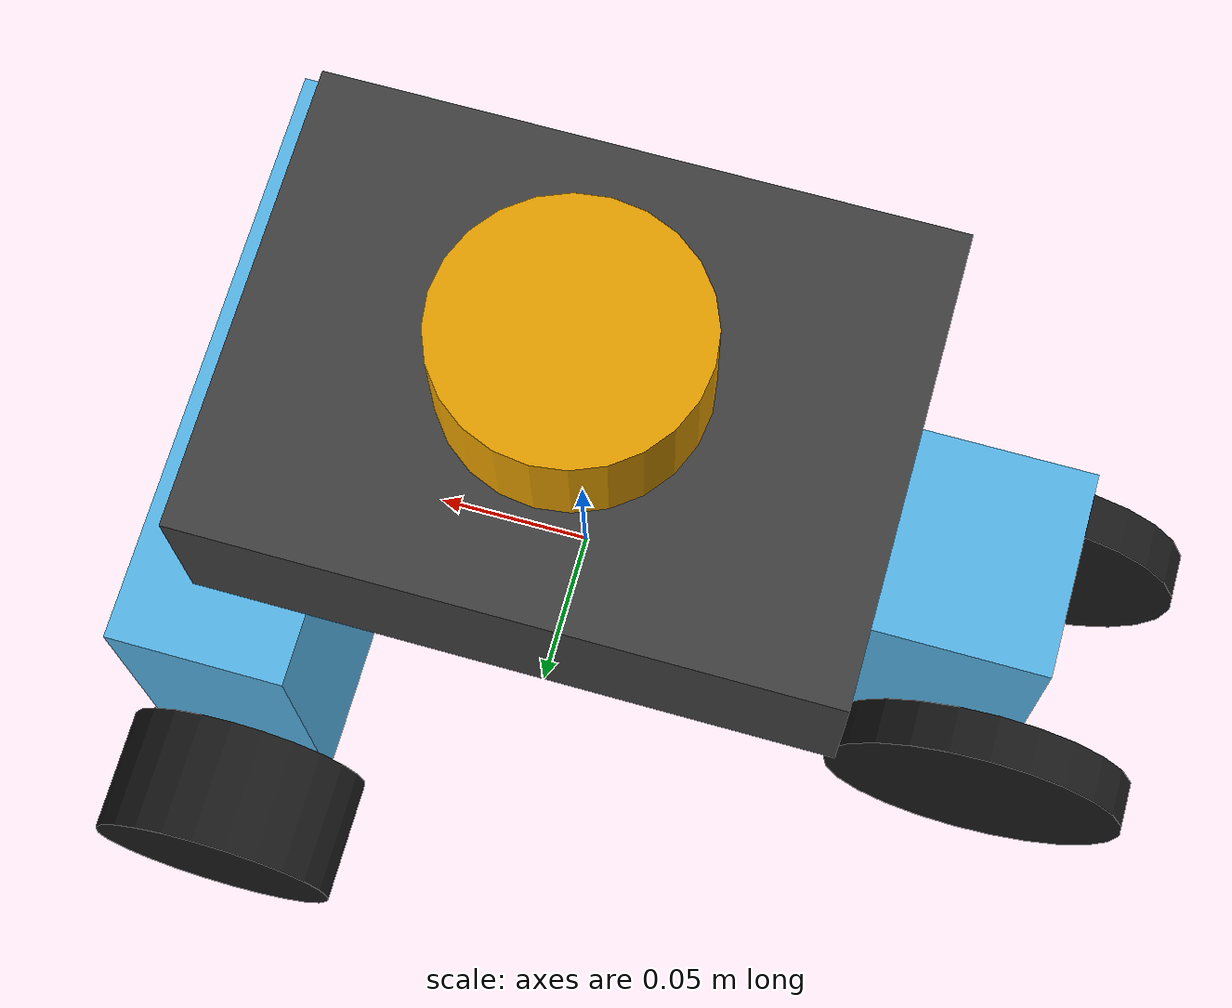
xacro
<?xml version="1.0"?>
<robot name="WALL-E" xmlns:xacro="http://www.ros.org/wiki/xacro">
  <xacro:include filename="$(find robot_description)/urdf/base.xacro"/>
  <xacro:include filename="$(find robot_description)/urdf/wheels.xacro"/>
  <xacro:include filename="$(find robot_description)/urdf/sensors.xacro"/>
  <xacro:include filename="$(find hardware)/ros2_control.xacro"/>
</robot>

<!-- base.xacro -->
<robot name="base" xmlns:xacro="http://www.ros.org/wiki/xacro">

    <xacro:property name="base_length" value="0.3"/>
    <xacro:property name="base_width" value="0.2"/>
    <xacro:property name="base_height" value="0.15"/>
    <xacro:property name="base_mass" value="4.0"/>
    <xacro:property name="base_color" value="0.25 0.25 0.25 1"/>

    <material name="base_material">
        <color rgba="${base_color}"/>
    </material>

    <link name="base_footprint"/>
    <link name="base_link">
        <visual>
            <origin xyz="0 0 0"/>
            <geometry>
                <box size="0.195 0.145 0.055"/>
            </geometry>
            <material name="base_material"/>
        </visual>
        <collision>
            <origin xyz="0 0 0"/>
            <geometry>
                <box size="0.19 0.145 0.055"/>
            </geometry>
        </collision>

        <inertial>
            <origin xyz="0 0 0"/>
            <mass value="${base_mass}"/>
            <inertia
                ixx="${(1/12) * base_mass * (base_width**2 + base_height**2)}"
                ixy="0" ixz="0"
                iyy="${(1/12) * base_mass * (base_length**2 + base_height**2)}"
                iyz="0"
                izz="${(1/12) * base_mass * (base_length**2 + base_width**2)}"/>
        </inertial>

        <visual>
            <origin xyz="-0.08 0 -0.075"/>
            <geometry>
                <box size="0.145 0.065 0.095"/>
            </geometry>
        </visual>
        <collision>
            <origin xyz="-0.08 0 -0.075"/>
            <geometry>
                <box size="0.145 0.065 0.095"/>
            </geometry>
        </collision>

        <visual>
            <origin xyz="0.09 0 -0.085"/>
            <geometry>
                <box size="0.055 0.19 0.115"/>
            </geometry>
        </visual>
        <collision>
            <origin xyz="0.09 0 -0.085"/>
            <geometry>
                <box size="0.055 0.19 0.115"/>
            </geometry>
        </collision>
    </link>

    <joint name="base_joint" type="fixed">
        <parent link="base_footprint"/>
        <child link="base_link"/>
        <origin xyz="0 0 0.12"/>
    </joint>

</robot>

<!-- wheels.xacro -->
<robot name="wheels" xmlns:xacro="http://www.ros.org/wiki/xacro">

    <!-- ===== Properties ===== -->

    <xacro:property name="front_wheel_radius"   value="0.04"/>
    <xacro:property name="front_wheel_width"    value="0.04"/>
    <xacro:property name="front_wheel_mass"      value="0.3"/>

    <xacro:property name="rear_wheel_radius"    value="0.05"/>
    <xacro:property name="rear_wheel_width"    value="0.015"/>
    <xacro:property name="rear_wheel_mass"       value="0.1"/>

    <!-- Ackermann geometry (must match controllers.yaml) -->
    <xacro:property name="wheelbase"            value="0.245"/>   <!-- front-to-rear axle distance -->
    <xacro:property name="front_track_width"    value="0.23"/>   <!-- left-to-right wheel distance -->
    <xacro:property name="rear_track_width"     value="0.08"/>
    <xacro:property name="front_wheel_z"        value="-0.1425"/> <!-- wheel centre below base_link -->
    <xacro:property name="rear_wheel_z"         value="-0.1325"/>

    <!-- Cylinder inertia (wheel rolls on Y axis) -->
    <xacro:property name="front_wheel_ixy" value="${(1/12) * front_wheel_mass * (3 * front_wheel_radius**2 + front_wheel_width**2)}"/>
    <xacro:property name="front_wheel_izz" value="${(1/2)  * front_wheel_mass * front_wheel_radius**2}"/>

    <xacro:property name="rear_wheel_ixy" value="${(1/12) * rear_wheel_mass * (3 * rear_wheel_radius**2 + rear_wheel_width**2)}"/>
    <xacro:property name="rear_wheel_izz" value="${(1/2)  * rear_wheel_mass * rear_wheel_radius**2}"/>

    <!-- Steering knuckle inertia (tiny virtual link) -->
    <xacro:property name="steer_mass"    value="0.05"/>
    <xacro:property name="steer_inertia" value="0.0001"/>

    <material name="wheel_material">
        <color rgba="0.1 0.1 0.1 1"/>
    </material>

    <!-- ===== Macros ===== -->

    <!-- Virtual steering knuckle link (Ackermann pivot) -->
    <xacro:macro name="steering_link" params="name">
        <link name="${name}">
            <visual>
                <origin xyz="0 0 0"/>
                <geometry><cylinder radius="0.01" length="0.001"/></geometry>
            </visual>
            <inertial>
                <origin xyz="0 0 0"/>
                <mass value="${steer_mass}"/>
                <inertia ixx="${steer_inertia}" ixy="0" ixz="0"
                         iyy="${steer_inertia}" iyz="0"
                         izz="${steer_inertia}"/>
            </inertial>
        </link>
    </xacro:macro>

    <!-- Wheel link (cylinder rotated 90° so it rolls on Y axis) -->
    <xacro:macro name="front_wheel_link" params="name">
        <link name="${name}">
            <visual>
                <origin xyz="0 0 0" rpy="1.5707963 0 0"/>
                <geometry><cylinder radius="${front_wheel_radius}" length="${front_wheel_width}"/></geometry>
                <material name="wheel_material"/>
            </visual>
            <collision>
                <origin xyz="0 0 0" rpy="1.5707963 0 0"/>
                <geometry><cylinder radius="${front_wheel_radius}" length="${front_wheel_width}"/></geometry>
            </collision>
            <inertial>
                <origin xyz="0 0 0"/>
                <mass value="${front_wheel_mass}"/>
                <inertia ixx="${front_wheel_ixy}" ixy="0" ixz="0"
                         iyy="${front_wheel_ixy}" iyz="0"
                         izz="${front_wheel_izz}"/>
            </inertial>
        </link>
    </xacro:macro>

    <xacro:macro name="rear_wheel_link" params="name">
        <link name="${name}">
            <visual>
                <origin xyz="0 0 0" rpy="1.5707963 0 0"/>
                <geometry><cylinder radius="${rear_wheel_radius}" length="${rear_wheel_width}"/></geometry>
                <material name="wheel_material"/>
            </visual>
            <collision>
                <origin xyz="0 0 0" rpy="1.5707963 0 0"/>
                <geometry><cylinder radius="${rear_wheel_radius}" length="${rear_wheel_width}"/></geometry>
            </collision>
            <inertial>
                <origin xyz="0 0 0"/>
                <mass value="${rear_wheel_mass}"/>
                <inertia ixx="${rear_wheel_ixy}" ixy="0" ixz="0"
                         iyy="${rear_wheel_ixy}" iyz="0"
                         izz="${rear_wheel_izz}"/>
            </inertial>
        </link>
    </xacro:macro>

    <!-- ===== Links ===== -->

    <!-- Front steering knuckles (Ackermann: FRONT only) -->
    <xacro:steering_link name="front_left_steering_link"/>
    <xacro:steering_link name="front_right_steering_link"/>

    <!-- All four wheels via macro -->
    <xacro:front_wheel_link name="front_left_wheel_link"/>
    <xacro:front_wheel_link name="front_right_wheel_link"/>
    <xacro:rear_wheel_link name="rear_left_wheel_link"/>
    <xacro:rear_wheel_link name="rear_right_wheel_link"/>

    <!-- ===== Joints ===== -->

    <!-- Front steering joints (revolute: Ackermann, front-only) -->
    <joint name="front_left_steering_joint" type="revolute">
        <parent link="base_link"/>
        <child link="front_left_steering_link"/>
        <origin xyz="0.09 ${front_track_width/2} ${front_wheel_z}"/>
        <axis xyz="0 0 1"/>
        <limit lower="-0.819" upper="0.819" effort="30.0" velocity="30.0"/>
        <dynamics damping="0.2" friction="0.0"/>
    </joint>

    <joint name="front_right_steering_joint" type="revolute">
        <parent link="base_link"/>
        <child link="front_right_steering_link"/>
        <origin xyz="0.09 ${-front_track_width/2} ${front_wheel_z}"/>
        <axis xyz="0 0 1"/>
        <limit lower="-0.819" upper="0.819" effort="30.0" velocity="30.0"/>
        <dynamics damping="0.2" friction="0.0"/>
    </joint>

    <!-- Front wheel joints (continuous: driven, child of steering knuckle) -->
    <joint name="front_left_wheel_joint" type="continuous">
        <parent link="front_left_steering_link"/>
        <child link="front_left_wheel_link"/>
        <origin xyz="0 0 0"/>
        <axis xyz="0 1 0"/>
        <dynamics damping="0.01" friction="0.0"/>
    </joint>

    <joint name="front_right_wheel_joint" type="continuous">
        <parent link="front_right_steering_link"/>
        <child link="front_right_wheel_link"/>
        <origin xyz="0 0 0"/>
        <axis xyz="0 1 0"/>
        <dynamics damping="0.01" friction="0.0"/>
    </joint>

    <!-- Rear wheel joints (continuous: connect directly to base_link, no steering) -->
    <joint name="rear_left_wheel_joint" type="continuous">
        <parent link="base_link"/>
        <child link="rear_left_wheel_link"/>
        <origin xyz="-0.145 ${rear_track_width/2} ${rear_wheel_z}"/>
        <axis xyz="0 1 0"/>
        <dynamics damping="0.01" friction="0.0"/>
    </joint>

    <joint name="rear_right_wheel_joint" type="continuous">
        <parent link="base_link"/>
        <child link="rear_right_wheel_link"/>
        <origin xyz="-0.145 ${-rear_track_width/2} ${rear_wheel_z}"/>
        <axis xyz="0 1 0"/>
        <dynamics damping="0.01" friction="0.0"/>
    </joint>

</robot>

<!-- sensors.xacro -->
<robot name="sensors" xmlns:xacro="http://www.ros.org/wiki/xacro">

  <xacro:property name="lidar_radius"   value="0.04"/>
  <xacro:property name="lidar_hight"    value="0.035"/>

  <link name="lidar_link">
    <visual>
        <origin xyz="0 0 0" rpy="0 0 1.5707963"/>
        <geometry><cylinder radius="${lidar_radius}" length="${lidar_hight}"/></geometry>
    </visual>
     <collision>
        <origin xyz="0 0 0" rpy="0 0 1.5707963"/>
        <geometry><cylinder radius="${lidar_radius}" length="${lidar_hight}"/></geometry>
      </collision>
  </link>

  <joint name="lidar_joint" type="fixed">
    <parent link="base_link"/>
    <child link="lidar_link"/>
    <origin xyz="0 0 0.045"/>
  </joint>
</robot>
